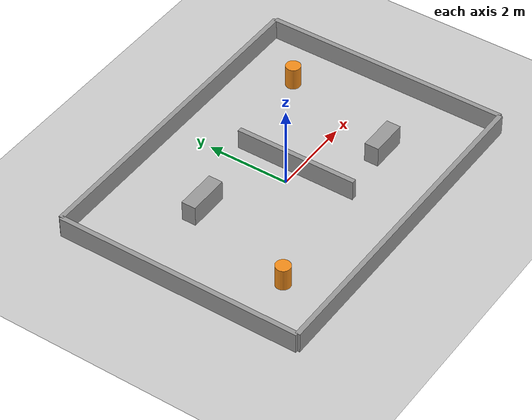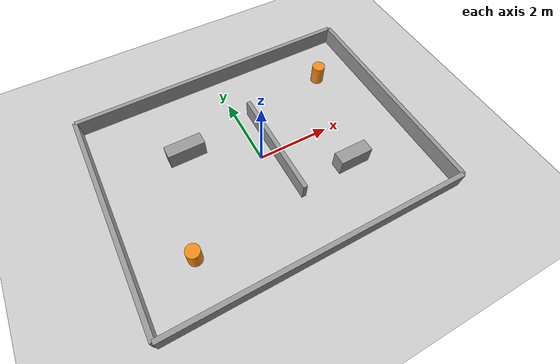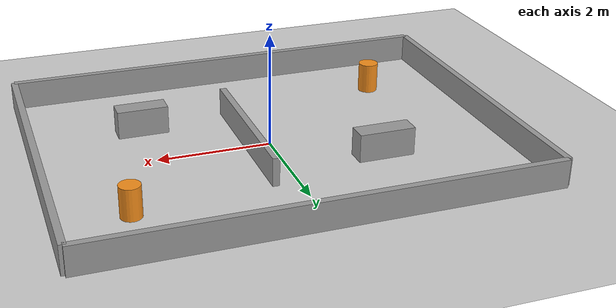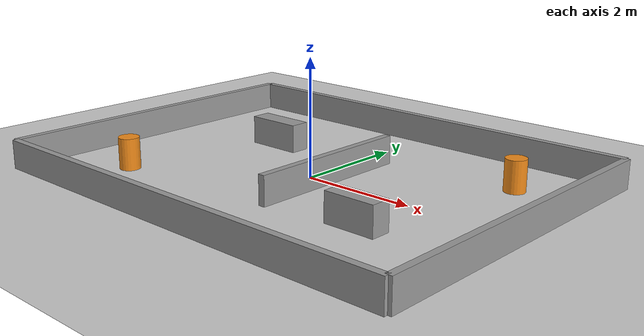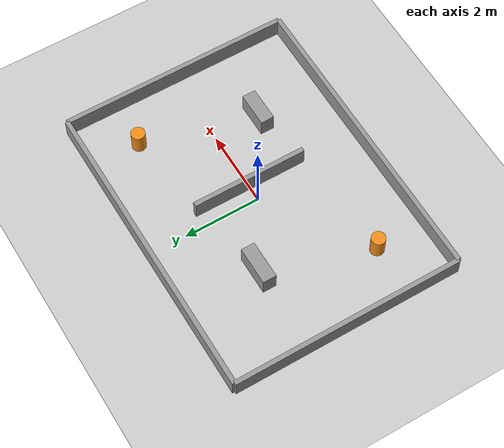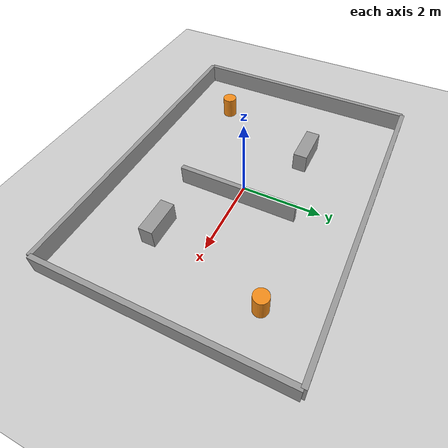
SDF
<?xml version="1.0"?>
<sdf version="1.6">
  <world name="default">
    <include>
      <uri>model://ground_plane</uri>
    </include>
    <include>
      <uri>model://sun</uri>
    </include>
    <scene>
      <shadows>false</shadows>
    </scene>
    <gui fullscreen="0">
      <camera name="user_camera">
        <pose frame="">0 0 12 0 1.5708 0</pose>
        <view_controller>orbit</view_controller>
        <projection_type>perspective</projection_type>
      </camera>
    </gui>
    <physics type="ode">
      <real_time_update_rate>1000.0</real_time_update_rate>
      <max_step_size>0.001</max_step_size>
      <real_time_factor>1</real_time_factor>
    </physics>
    <model name="north_wall">
      <static>true</static>
      <pose>0.000 3.000 0.250 0 0 0</pose>
      <link name="link">
        <collision name="collision">
          <geometry><box><size>8.000 0.120 0.500</size></box></geometry>
        </collision>
        <visual name="visual">
          <geometry><box><size>8.000 0.120 0.500</size></box></geometry>
          <material>
            <script>
              <uri>file://media/materials/scripts/gazebo.material</uri>
              <name>Gazebo/Grey</name>
            </script>
          </material>
        </visual>
      </link>
    </model>
    <model name="south_wall">
      <static>true</static>
      <pose>0.000 -3.000 0.250 0 0 0</pose>
      <link name="link">
        <collision name="collision">
          <geometry><box><size>8.000 0.120 0.500</size></box></geometry>
        </collision>
        <visual name="visual">
          <geometry><box><size>8.000 0.120 0.500</size></box></geometry>
          <material>
            <script>
              <uri>file://media/materials/scripts/gazebo.material</uri>
              <name>Gazebo/Grey</name>
            </script>
          </material>
        </visual>
      </link>
    </model>
    <model name="west_wall">
      <static>true</static>
      <pose>-4.000 0.000 0.250 0 0 0</pose>
      <link name="link">
        <collision name="collision">
          <geometry><box><size>0.120 6.000 0.500</size></box></geometry>
        </collision>
        <visual name="visual">
          <geometry><box><size>0.120 6.000 0.500</size></box></geometry>
          <material>
            <script>
              <uri>file://media/materials/scripts/gazebo.material</uri>
              <name>Gazebo/Grey</name>
            </script>
          </material>
        </visual>
      </link>
    </model>
    <model name="east_wall">
      <static>true</static>
      <pose>4.000 0.000 0.250 0 0 0</pose>
      <link name="link">
        <collision name="collision">
          <geometry><box><size>0.120 6.000 0.500</size></box></geometry>
        </collision>
        <visual name="visual">
          <geometry><box><size>0.120 6.000 0.500</size></box></geometry>
          <material>
            <script>
              <uri>file://media/materials/scripts/gazebo.material</uri>
              <name>Gazebo/Grey</name>
            </script>
          </material>
        </visual>
      </link>
    </model>
    <model name="middle_bar">
      <static>true</static>
      <pose>0.400 0.000 0.250 0 0 0</pose>
      <link name="link">
        <collision name="collision">
          <geometry><box><size>0.120 3.000 0.500</size></box></geometry>
        </collision>
        <visual name="visual">
          <geometry><box><size>0.120 3.000 0.500</size></box></geometry>
          <material>
            <script>
              <uri>file://media/materials/scripts/gazebo.material</uri>
              <name>Gazebo/Grey</name>
            </script>
          </material>
        </visual>
      </link>
    </model>
    <model name="left_block">
      <static>true</static>
      <pose>-1.700 1.000 0.250 0 0 0</pose>
      <link name="link">
        <collision name="collision">
          <geometry><box><size>1.000 0.350 0.500</size></box></geometry>
        </collision>
        <visual name="visual">
          <geometry><box><size>1.000 0.350 0.500</size></box></geometry>
          <material>
            <script>
              <uri>file://media/materials/scripts/gazebo.material</uri>
              <name>Gazebo/Grey</name>
            </script>
          </material>
        </visual>
      </link>
    </model>
    <model name="right_block">
      <static>true</static>
      <pose>2.000 -1.200 0.250 0 0 0</pose>
      <link name="link">
        <collision name="collision">
          <geometry><box><size>0.900 0.350 0.500</size></box></geometry>
        </collision>
        <visual name="visual">
          <geometry><box><size>0.900 0.350 0.500</size></box></geometry>
          <material>
            <script>
              <uri>file://media/materials/scripts/gazebo.material</uri>
              <name>Gazebo/Grey</name>
            </script>
          </material>
        </visual>
      </link>
    </model>
    <model name="round_obstacle_a">
      <static>true</static>
      <pose>-2.600 -1.700 0.275 0 0 0</pose>
      <link name="link">
        <collision name="collision">
          <geometry><cylinder><radius>0.180</radius><length>0.550</length></cylinder></geometry>
        </collision>
        <visual name="visual">
          <geometry><cylinder><radius>0.180</radius><length>0.550</length></cylinder></geometry>
          <material>
            <script>
              <uri>file://media/materials/scripts/gazebo.material</uri>
              <name>Gazebo/Orange</name>
            </script>
          </material>
        </visual>
      </link>
    </model>
    <model name="round_obstacle_b">
      <static>true</static>
      <pose>2.800 1.700 0.275 0 0 0</pose>
      <link name="link">
        <collision name="collision">
          <geometry><cylinder><radius>0.180</radius><length>0.550</length></cylinder></geometry>
        </collision>
        <visual name="visual">
          <geometry><cylinder><radius>0.180</radius><length>0.550</length></cylinder></geometry>
          <material>
            <script>
              <uri>file://media/materials/scripts/gazebo.material</uri>
              <name>Gazebo/Orange</name>
            </script>
          </material>
        </visual>
      </link>
    </model>
  </world>
</sdf>
